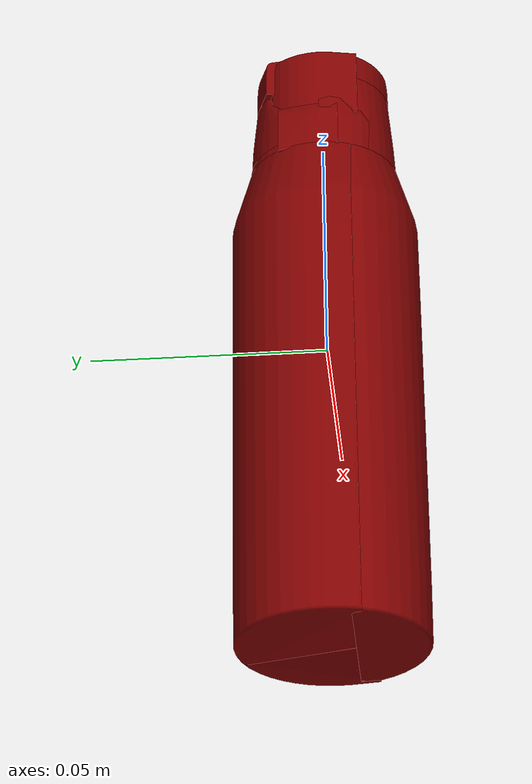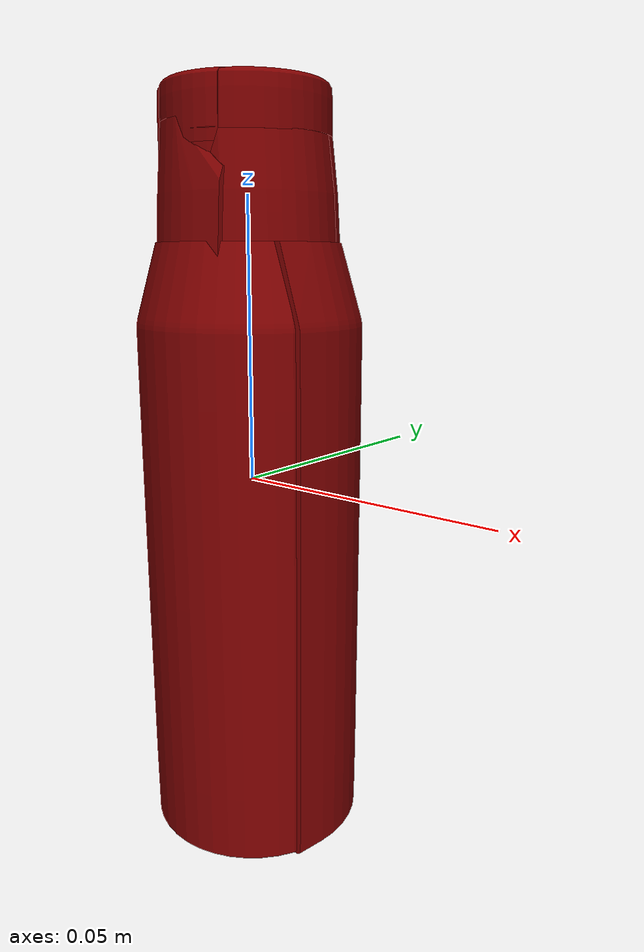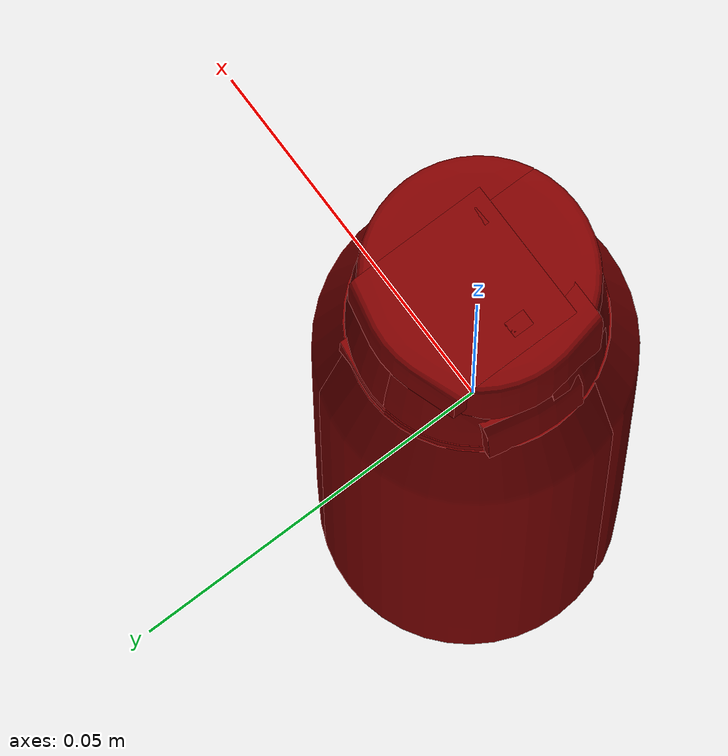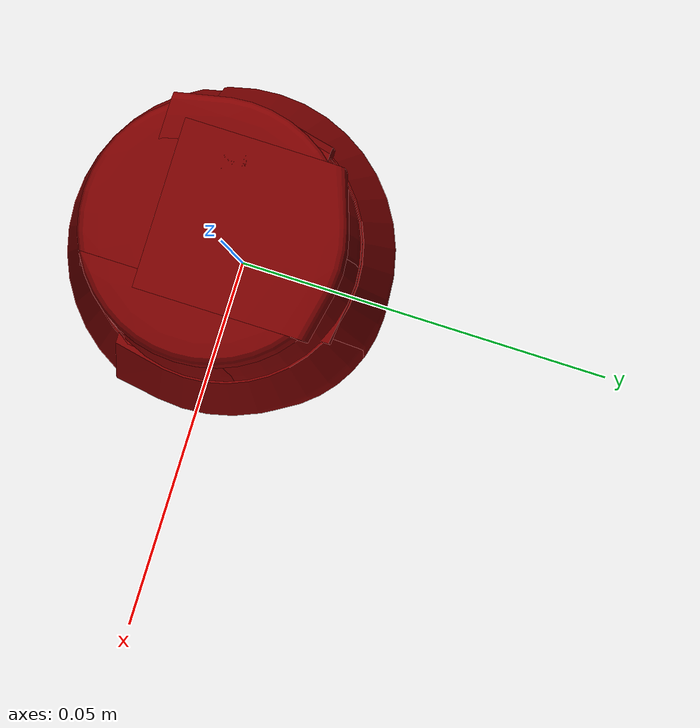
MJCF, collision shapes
<?xml version='1.0' encoding='utf-8'?>
<mujoco model="water_bottle_7">
  <asset>
    <mesh file="visual/model_normalized_0.obj" name="model_normalized_0_vis" scale="0.135 0.135 0.135" refquat="1.0 0.0 0.0 0.0" />
    <mesh file="visual/model_normalized_1.obj" name="model_normalized_1_vis" scale="0.135 0.135 0.135" refquat="1.0 0.0 0.0 0.0" />
    <material name="blinn1SG.001" specular="0.5" shininess="0.264103545" rgba="0.341818 0.583040 0.334364 1.0" />
    <material name="phong1SG.001" specular="0.5" shininess="0.15999998099999999" rgba="0.575719 0.575719 0.575719 1.0" />
    <mesh file="collision/collision_mesh_collision_0.obj" name="water_collision_mesh_0" scale="0.135 0.135 0.135" refquat="1.0 0.0 0.0 0.0" />
    <mesh file="collision/collision_mesh_collision_1.obj" name="water_collision_mesh_1" scale="0.135 0.135 0.135" refquat="1.0 0.0 0.0 0.0" />
    <mesh file="collision/collision_mesh_collision_2.obj" name="water_collision_mesh_2" scale="0.135 0.135 0.135" refquat="1.0 0.0 0.0 0.0" />
    <mesh file="collision/collision_mesh_collision_3.obj" name="water_collision_mesh_3" scale="0.135 0.135 0.135" refquat="1.0 0.0 0.0 0.0" />
    <mesh file="collision/collision_mesh_collision_4.obj" name="water_collision_mesh_4" scale="0.135 0.135 0.135" refquat="1.0 0.0 0.0 0.0" />
    <mesh file="collision/collision_mesh_collision_5.obj" name="water_collision_mesh_5" scale="0.135 0.135 0.135" refquat="1.0 0.0 0.0 0.0" />
    <mesh file="collision/collision_mesh_collision_6.obj" name="water_collision_mesh_6" scale="0.135 0.135 0.135" refquat="1.0 0.0 0.0 0.0" />
    <mesh file="collision/collision_mesh_collision_7.obj" name="water_collision_mesh_7" scale="0.135 0.135 0.135" refquat="1.0 0.0 0.0 0.0" />
    <mesh file="collision/collision_mesh_collision_8.obj" name="water_collision_mesh_8" scale="0.135 0.135 0.135" refquat="1.0 0.0 0.0 0.0" />
    <mesh file="collision/collision_mesh_collision_9.obj" name="water_collision_mesh_9" scale="0.135 0.135 0.135" refquat="1.0 0.0 0.0 0.0" />
    <mesh file="collision/collision_mesh_collision_10.obj" name="water_collision_mesh_10" scale="0.135 0.135 0.135" refquat="1.0 0.0 0.0 0.0" />
    <mesh file="collision/collision_mesh_collision_11.obj" name="water_collision_mesh_11" scale="0.135 0.135 0.135" refquat="1.0 0.0 0.0 0.0" />
    <mesh file="collision/collision_mesh_collision_12.obj" name="water_collision_mesh_12" scale="0.135 0.135 0.135" refquat="1.0 0.0 0.0 0.0" />
    <mesh file="collision/collision_mesh_collision_13.obj" name="water_collision_mesh_13" scale="0.135 0.135 0.135" refquat="1.0 0.0 0.0 0.0" />
    <mesh file="collision/collision_mesh_collision_14.obj" name="water_collision_mesh_14" scale="0.135 0.135 0.135" refquat="1.0 0.0 0.0 0.0" />
    <mesh file="collision/collision_mesh_collision_15.obj" name="water_collision_mesh_15" scale="0.135 0.135 0.135" refquat="1.0 0.0 0.0 0.0" />
    </asset>
  <default>
    <default class="region">
      <geom group="1" conaffinity="0" contype="0" rgba="0 1 0 0" />
      </default>
    <default class="collision">
      <geom group="0" rgba="0.5 0 0 0.5" density="1000.0" />
      </default>
    </default>
  <worldbody>
    <body>
      <body name="object">
        <geom solimp="0.998 0.998 0.001" solref="0.001 1" density="100" friction="0.95 0.3 0.1" type="mesh" mesh="model_normalized_0_vis" conaffinity="0" contype="0" group="1" material="phong1SG.001" />
        <geom solimp="0.998 0.998 0.001" solref="0.001 1" density="100" friction="0.95 0.3 0.1" type="mesh" mesh="model_normalized_1_vis" conaffinity="0" contype="0" group="1" material="blinn1SG.001" />
        <geom class="region" name="reg_bbox" type="box" pos="-0.0001233346500000008 2.765475000000087e-06 -5.4161999999968735e-06" size="0.019447289999999996 0.019714970700000004 0.0674718606" />
        <geom mesh="water_collision_mesh_0" type="mesh" class="collision" />
        <geom mesh="water_collision_mesh_1" type="mesh" class="collision" />
        <geom mesh="water_collision_mesh_2" type="mesh" class="collision" />
        <geom mesh="water_collision_mesh_3" type="mesh" class="collision" />
        <geom mesh="water_collision_mesh_4" type="mesh" class="collision" />
        <geom mesh="water_collision_mesh_5" type="mesh" class="collision" />
        <geom mesh="water_collision_mesh_6" type="mesh" class="collision" />
        <geom mesh="water_collision_mesh_7" type="mesh" class="collision" />
        <geom mesh="water_collision_mesh_8" type="mesh" class="collision" />
        <geom mesh="water_collision_mesh_9" type="mesh" class="collision" />
        <geom mesh="water_collision_mesh_10" type="mesh" class="collision" />
        <geom mesh="water_collision_mesh_11" type="mesh" class="collision" />
        <geom mesh="water_collision_mesh_12" type="mesh" class="collision" />
        <geom mesh="water_collision_mesh_13" type="mesh" class="collision" />
        <geom mesh="water_collision_mesh_14" type="mesh" class="collision" />
        <geom mesh="water_collision_mesh_15" type="mesh" class="collision" />
        </body>
      </body>
    </worldbody>
  </mujoco>
